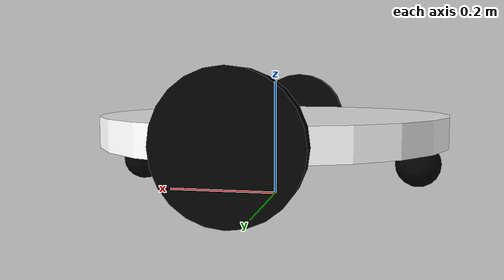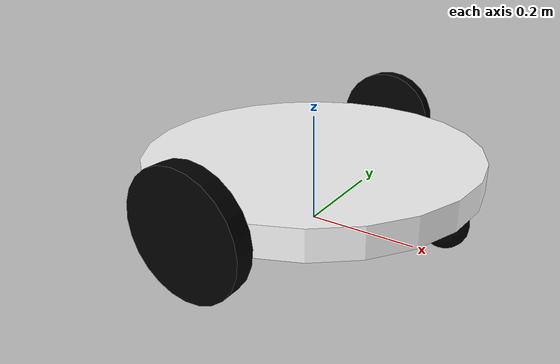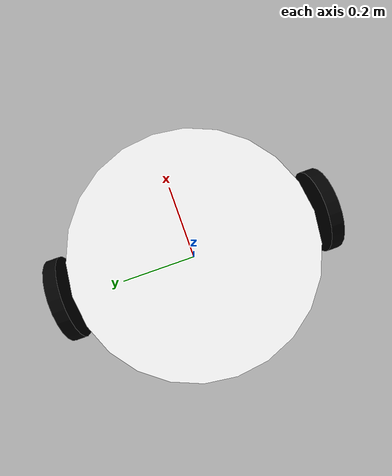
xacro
<?xml version="1.0"?>
<robot xmlns:xacro="http://www.ros.org/wiki/xacro" >

    <xacro:include filename = "inertial_macros.xacro"/>
    <material name="white">
        <color rgba="1 1 1 1" />
    </material>

    <material name="orange">
        <color rgba="1 0.3 0.1 1" />
    </material>

    <material name="blue">
        <color rgba="0.2 0.2 1 1" />
    </material>

    <material name="black">
        <color rgba="0 0 0 1" />
    </material>

    <material name="red">
        <color rgba = "1 0 0 1"/>
    </material>

    <!-- BASE LINK-->
    <link name="base_link">
    </link>

    <!--CHASSIS LINK-->
    <joint name="chassis joint" type="fixed">
        <parent link="base_link"/>
        <child link="chassis"/>
        <origin xyz="0 0 0.12"/>
    </joint>

    <link name ="chassis">

        <visual>
            <origin xyz="0 0 0"/>
            <geometry>
                <cylinder radius = "0.3" length = "0.05"/>
            </geometry>
            <material name="white"/>
        </visual>

        <collision>
            <origin xyz="0 0 0"/>
            <geometry>
                <cylinder radius = "0.3" length = "0.05"/>
            </geometry>
        </collision>

        <xacro:inertial_cylinder mass = "0.5" length = "0.05" radius = "0.3">
            <origin xyz = "0 0 0" rpy = "0 0 0"/>
        </xacro:inertial_cylinder>

    </link>

    <gazebo reference = "chassis">
        <material>Gazebo/White</material>
    </gazebo>

    <!--LEFT WHEEL LINK-->
    <joint name="left_wheel_joint" type = "continuous">
        <parent link = "base_link"/>
        <child link = "left_wheel"/>
        <origin xyz = "0 0.316 0.12" rpy = "-${pi/2} 0 0"/>
        <axis xyz = "0 0 1"/>
    </joint>

    <link name = "left_wheel">

        <visual>
            <geometry>
                <cylinder radius = "0.1" length = "0.03"/>
            </geometry>
            <material name = "black"/>
        </visual>

        <collision>
            <geometry>
                <cylinder radius = "0.1" length = "0.03"/>
            </geometry>
        </collision>

        <xacro:inertial_cylinder mass = "0.1" length = "0.03" radius = "0.1">
            <origin xyz = "0 0 0" rpy = "0 0 0"/>
        </xacro:inertial_cylinder>

    </link>

    <gazebo reference = "left_wheel">
        <material>Gazebo/Black</material>
    </gazebo>

    <!--RIGHT WHEEL LINK-->
    <joint name="right_wheel_joint" type = "continuous">
        <parent link = "base_link"/>
        <child link = "right_wheel"/>
        <origin xyz = "0 -0.316 0.12" rpy = "${pi/2} 0 0"/>
        <axis xyz = "0 0 -1"/>
    </joint>

    <link name = "right_wheel">
        <visual>
            <geometry>
                <cylinder radius = "0.1" length = "0.03"/>
            </geometry>
            <material name = "black"/>
        </visual>

        <collision>
            <geometry>
                <cylinder radius = "0.1" length = "0.03"/>
            </geometry>
        </collision>

        <xacro:inertial_cylinder mass = "0.1" length = "0.03" radius = "0.1">
            <origin xyz = "0 0 0" rpy = "0 0 0"/>
        </xacro:inertial_cylinder>

    </link>

    <gazebo reference = "right_wheel">
        <material>Gazebo/Black</material>
    </gazebo>

    <!--CASTER WHEEL1 LINK-->
    <joint name = "caster_wheel1_joint" type = "fixed">
        <parent link = "chassis"/>
        <child link = "caster_wheel1"/>
        <origin xyz = "0.25 0 -0.0605"/>
    </joint>

    <link name = "caster_wheel1">
        <visual>
            <geometry>
                <sphere radius = "0.039"/>
            </geometry>
            <material name = "black"/>
        </visual>

         <collision>
            <geometry>
                <sphere radius = "0.039"/>
            </geometry>
        </collision>

        <xacro:inertial_sphere mass = "0.1" radius = "0.039">
            <origin xyz = "0 0 0" rpy = "0 0 0"/>
        </xacro:inertial_sphere>

    </link>

    <gazebo reference = "caster_wheel1">
        <material>Gazebo/Gray</material>
        <mu1 value = "0.001"/>
        <mu2 value = "0.001"/>
    </gazebo>

    <!--CASTER WHEEL2 LINK-->
    <joint name = "caster_wheel2_joint" type = "fixed">
        <parent link = "chassis"/>
        <child link = "caster_wheel2"/>
        <origin xyz = "-0.25 0 -0.0605"/>
    </joint>

    <link name = "caster_wheel2">
        <visual>
            <geometry>
                <sphere radius = "0.039"/>
            </geometry>
            <material name = "black"/>
        </visual>

        <collision>
            <geometry>
                <sphere radius = "0.039"/>
            </geometry>
        </collision>

        <xacro:inertial_sphere mass = "0.1" radius = "0.039">
            <origin xyz = "0 0 0" rpy = "0 0 0"/>
        </xacro:inertial_sphere>

    </link>

    <gazebo reference = "caster_wheel2">
        <material>Gazebo/Gray</material>
        <mu1 value = "0.001"/>
        <mu2 value = "0.001"/>
    </gazebo>

</robot>
